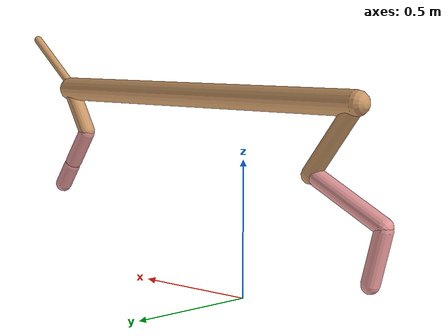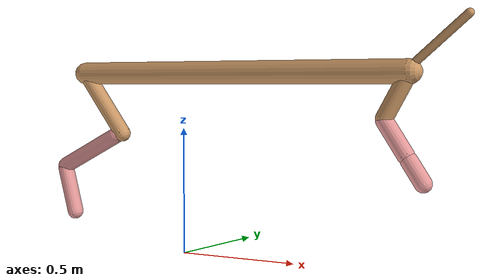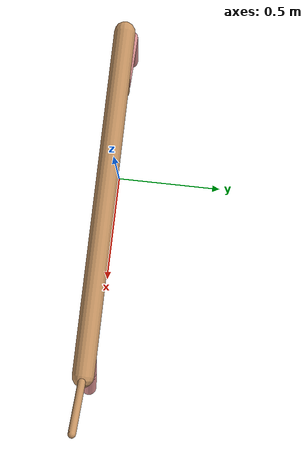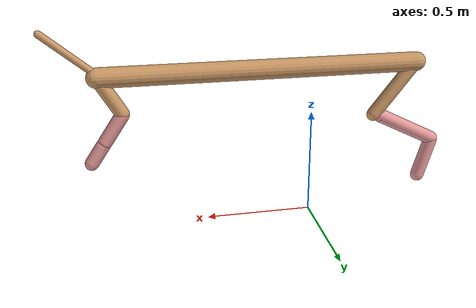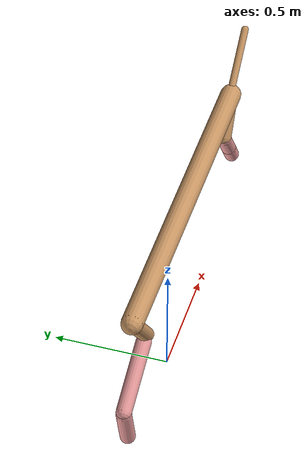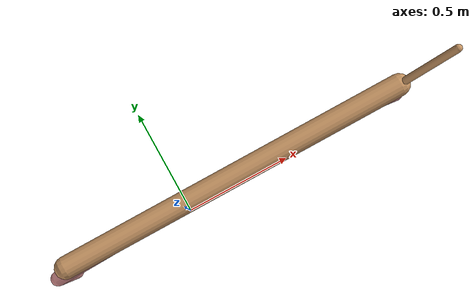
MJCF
<mujoco model="cheetah">
  <compiler angle="radian" coordinate="local" inertiafromgeom="true" settotalmass="14" />
  <default>
    <joint armature=".1" damping=".01" limited="true" solimplimit="0 .8 .03" solreflimit=".02 1" stiffness="8" />
    <geom conaffinity="0" condim="3" contype="1" friction="0.8 .1 .1" rgba="0.8 0.6 .4 1" solimp="0.0 0.8 0.01" solref="0.02 1" />
    <motor ctrllimited="true" ctrlrange="-1 1" />
  </default>
  <size nstack="300000" nuser_geom="1" />
  <option gravity="0 0 -9.81" timestep="0.01" />
  <worldbody>
    <body name="torso" pos="0.0 0.0 0.7201983116457606">
      <joint armature="0" axis="1 0 0" damping="0" limited="false" name="ignorex" pos="0 0 0" stiffness="0" type="slide" />
      <joint armature="0" axis="0 0 1" damping="0" limited="false" name="ignorez" pos="0 0 0" stiffness="0" type="slide" />
      <joint armature="0" axis="0 1 0" damping="0" limited="false" name="ignorey" pos="0 0 0" stiffness="0" type="hinge" />
      <geom fromto="-0.5 0.0 0.0 0.9608160432560141 0.0 0.0" name="torso" size="0.04532149058645727" type="capsule" />
      <geom axisangle="0 1 0 .87" name="head" pos="1.0608160432560143 0.0 0.1" size="0.015867328030013356 0.15" type="capsule" />

      <body name="bthigh" pos="-.5 0 0">
        <joint axis="0 1 0" damping="6" name="bthigh" pos="0 0 0" range="-.52 1.05" stiffness="240" type="hinge" />
        <geom axisangle="0 1 0 -3.8" name="bthigh" pos="0.10151329962237739 0.0 -0.13196728950909062" size="0.03271402244138976 0.1474819959225723" type="capsule" />
        <body name="bshin" pos="0.16302659924475477 0.0 -0.25393457901818123">
          <joint axis="0 1 0" damping="4.5" name="bshin" pos="0 0 0" range="-.785 .785" stiffness="180" type="hinge" />
          <geom axisangle="0 1 0 -2.03" name="bshin" pos="-0.14229651514596509 0.0 -0.07114825757298254" rgba="0.9 0.6 0.6 1" size="0.03271402244138976 0.15256758198886788" type="capsule" />
          <body name="bfoot" pos="-0.28459303029193017 0.0 -0.14229651514596509">
            <joint axis="0 1 0" damping="3" name="bfoot" pos="0 0 0" range="-.4 .785" stiffness="120" type="hinge" />
            <geom axisangle="0 1 0 -.27" name="bfoot" pos="0.03047541611633377 0.0 -0.09853717877614586" rgba="0.9 0.6 0.6 1" size="0.03271402244138976 0.09560901804635721" type="capsule" />
            <inertial mass="10" />
          </body>
        </body>
      </body>
      <body name="fthigh" pos="0.9608160432560142 0.0 0.0">
        <joint axis="0 1 0" damping="4.5" name="fthigh" pos="0 0 0" range="-1.5 0.8" stiffness="180" type="hinge" />
        <geom axisangle="0 1 0 .52" name="fthigh" pos="-0.04989554608158897 0.0 -0.0855352218541525" size="0.0322 0.0931" type="capsule" />
        <body name="fshin" pos="-0.09979109216317794 0.0 -0.171070443708305">
          <joint axis="0 1 0" damping="3" name="fshin" pos="0 0 0" range="-1.2 1.1" stiffness="120" type="hinge" />
          <geom axisangle="0 1 0 -.6" name="fshin" pos="0.046381400387749405 0.0 -0.06422040053688378" rgba="0.9 0.6 0.6 1" size="0.0322 0.07419999999999999" type="capsule" />
          <body name="ffoot" pos="0.09276280077549881 0.0 -0.12844080107376757">
            <joint axis="0 1 0" damping="1.5" name="ffoot" pos="0 0 0" range="-3.1 -0.3" stiffness="60" type="hinge" />
            <geom axisangle="0 1 0 -.6" name="ffoot" pos="0.033644090582416526 0.0 -0.05233525201709238" rgba="0.9 0.6 0.6 1" size="0.0322 0.049" type="capsule" />
            <inertial mass="10" />
          </body>
        </body>
      </body>
    </body>
  </worldbody>
  <actuator>
    <motor gear="120" joint="bthigh" name="bthigh" />
    <motor gear="90" joint="bshin" name="bshin" />
    <motor gear="60" joint="bfoot" name="bfoot" />
    <motor gear="120" joint="fthigh" name="fthigh" />
    <motor gear="60" joint="fshin" name="fshin" />
    <motor gear="30" joint="ffoot" name="ffoot" />
  </actuator>
</mujoco>
